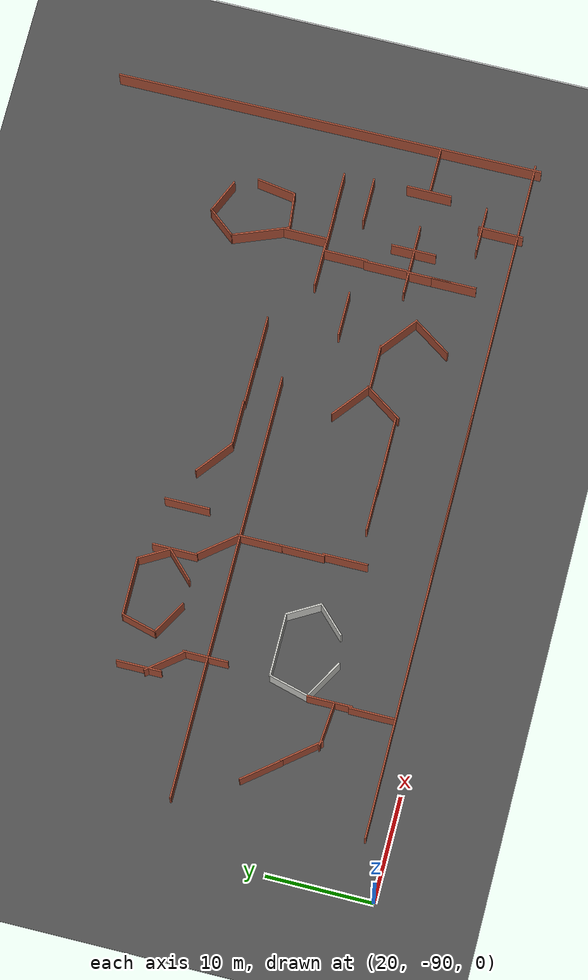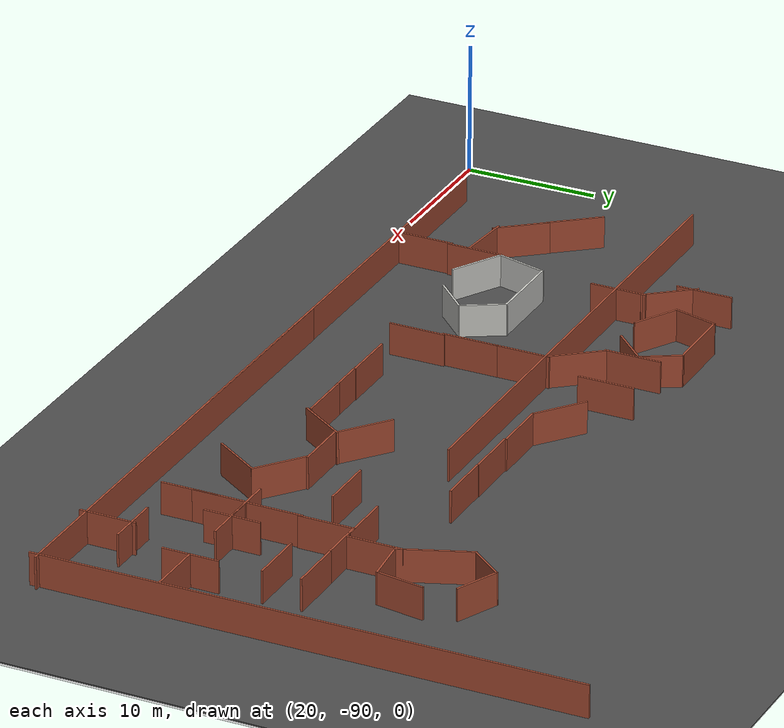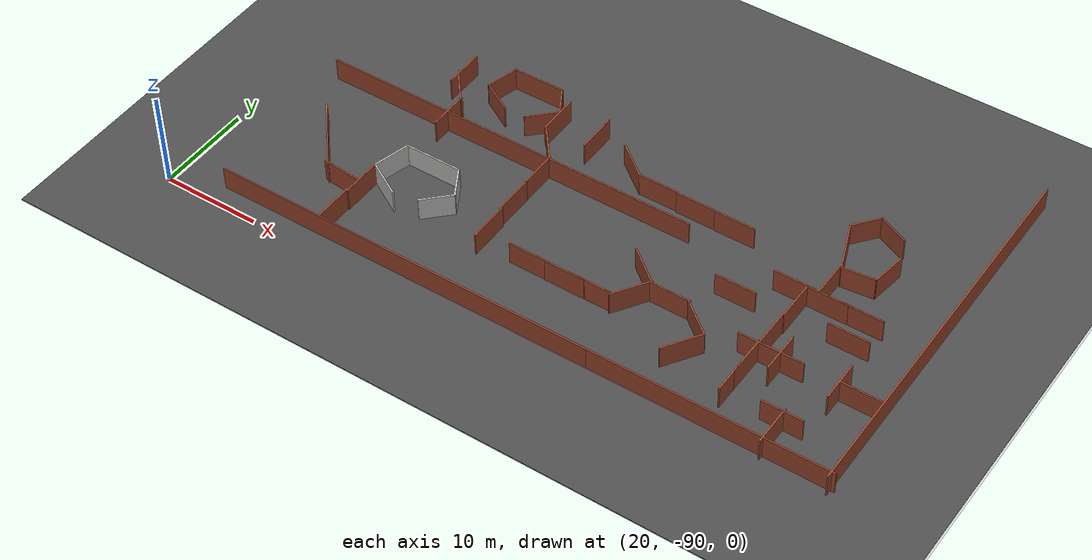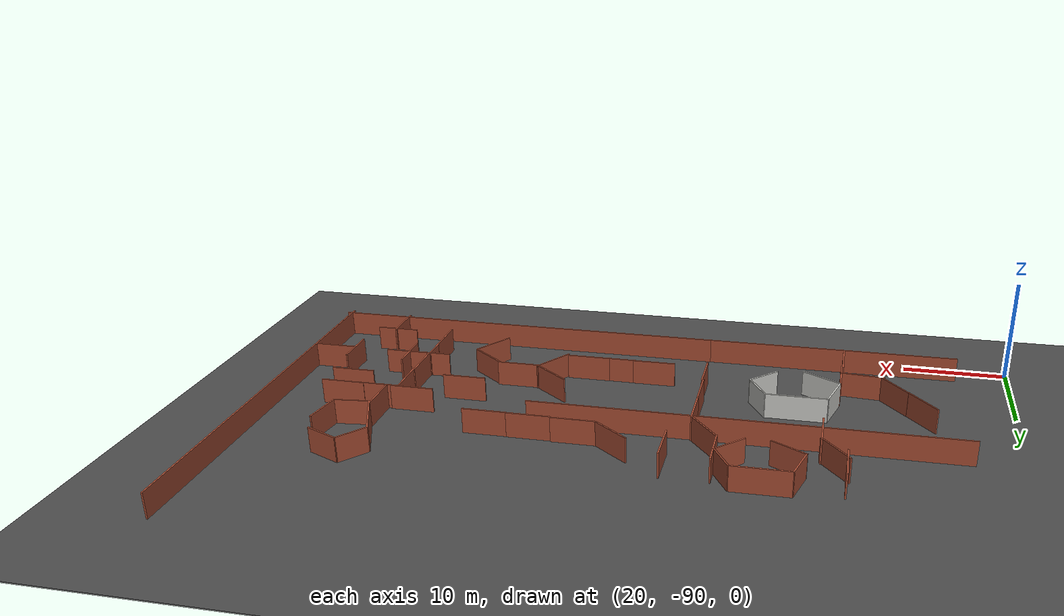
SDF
<sdf version="1.6">
 <world name="default">
  <model name="ground_plane">
   <static>1</static>
   <link name="link">
    <collision name="collision">
     <geometry><plane><normal>0 0 1</normal><size>200 200</size></plane></geometry>
     <surface><friction><ode><mu>100</mu><mu2>50</mu2></ode></friction></surface>
    </collision>
    <visual name="visual">
     <cast_shadows>0</cast_shadows>
     <geometry><plane><normal>0 0 1</normal><size>200 200</size></plane></geometry>
     <material>
      <script><uri>file://media/materials/scripts/gazebo.material</uri><name>Gazebo/Grey</name></script>
     </material>
    </visual>
   </link>
  </model>
  <model name="asphalt_plane">
   <static>1</static>
   <link name="link">
    <collision name="collision"><geometry><box><size>200 200 0.1</size></box></geometry></collision>
    <visual name="visual">
     <cast_shadows>0</cast_shadows>
     <geometry><box><size>200 200 0.1</size></box></geometry>
     <material>
      <script>
       <uri>model://asphalt_plane/materials/scripts</uri>
       <uri>model://asphalt_plane/materials/textures</uri>
       <name>vrc/asphalt</name>
      </script>
     </material>
    </visual>
   </link>
  </model>
  <model name="brick_worlds_1_clone_1_clone">
   <pose>51.1412 -64.7 0 0 -0 0</pose>
   <link name="Wall_0">
    <collision name="Wall_0_Collision">
     <geometry><box><size>4.25 0.15 2.5</size></box></geometry>
     <pose>0 0 1.25 0 -0 0</pose>
    </collision>
    <visual name="Wall_0_Visual">
     <pose>0 0 1.25 0 -0 0</pose>
     <geometry><box><size>4.25 0.15 2.5</size></box></geometry>
     <material>
      <script><uri>file://media/materials/scripts/gazebo.material</uri><name>Gazebo/Bricks</name></script>
      <ambient>1 1 1 1</ambient>
     </material>
    </visual>
    <pose>0 -0 0 0 -0 1.5708</pose>
   </link>
   <static>1</static>
  </model>
  <model name="brick_longwall_clone_clone_1">
   <pose>45.3217 -87.8888 0 0 -0 0</pose>
   <link name="Wall_0">
    <collision name="Wall_0_Collision">
     <geometry><box><size>40.5 0.15 2.5</size></box></geometry>
     <pose>0 0 1.25 0 -0 0</pose>
    </collision>
    <visual name="Wall_0_Visual">
     <pose>0 0 1.25 0 -0 0</pose>
     <geometry><box><size>40.5 0.15 2.5</size></box></geometry>
     <material>
      <script><uri>file://media/materials/scripts/gazebo.material</uri><name>Gazebo/Bricks</name></script>
      <ambient>1 1 1 1</ambient>
     </material>
    </visual>
    <pose>1e-06 0 0 0 -0 0</pose>
   </link>
   <static>1</static>
  </model>
  <model name="brick_longwall_clone_clone_3_clone_0">
   <pose>89.9316 -68.2995 0 0 0 -1.56602</pose>
   <link name="Wall_0">
    <collision name="Wall_0_Collision">
     <geometry><box><size>40.5 0.15 2.5</size></box></geometry>
     <pose>0 0 1.25 0 -0 0</pose>
    </collision>
    <visual name="Wall_0_Visual">
     <pose>0 0 1.25 0 -0 0</pose>
     <geometry><box><size>40.5 0.15 2.5</size></box></geometry>
     <material>
      <script><uri>file://media/materials/scripts/gazebo.material</uri><name>Gazebo/Bricks</name></script>
      <ambient>1 1 1 1</ambient>
     </material>
    </visual>
    <pose>1e-06 0 0 0 -0 0</pose>
   </link>
   <static>1</static>
  </model>
  <model name="brick_longwall_clone_clone_0">
   <pose>44.6402 -70.1055 0 0 -0 0</pose>
   <link name="Wall_0">
    <collision name="Wall_0_Collision">
     <geometry><box><size>40.5 0.15 2.5</size></box></geometry>
     <pose>0 0 1.25 0 -0 0</pose>
    </collision>
    <visual name="Wall_0_Visual">
     <pose>0 0 1.25 0 -0 0</pose>
     <geometry><box><size>40.5 0.15 2.5</size></box></geometry>
     <material>
      <script><uri>file://media/materials/scripts/gazebo.material</uri><name>Gazebo/Bricks</name></script>
      <ambient>1 1 1 1</ambient>
     </material>
    </visual>
    <pose>1e-06 0 0 0 -0 0</pose>
   </link>
   <static>1</static>
  </model>
  <model name="brick_worlds_1_clone_0_clone_clone_0_clone_clone_clone_0">
   <pose>67.9553 -78.1375 0 0 0 -1.57092</pose>
   <link name="Wall_0">
    <collision name="Wall_0_Collision">
     <geometry><box><size>4.25 0.15 2.5</size></box></geometry>
     <pose>0 0 1.25 0 -0 0</pose>
    </collision>
    <visual name="Wall_0_Visual">
     <pose>0 0 1.25 0 -0 0</pose>
     <geometry><box><size>4.25 0.15 2.5</size></box></geometry>
     <material>
      <script><uri>file://media/materials/scripts/gazebo.material</uri><name>Gazebo/Bricks</name></script>
      <ambient>1 1 1 1</ambient>
     </material>
    </visual>
    <pose>0 -0 0 0 -0 1.5708</pose>
   </link>
   <static>1</static>
  </model>
  <model name="brick_worlds_1_clone_1_clone_clone_0_clone">
   <pose>49.3914 -71.9286 0 0 -0 0</pose>
   <link name="Wall_0">
    <collision name="Wall_0_Collision">
     <geometry><box><size>4.25 0.15 2.5</size></box></geometry>
     <pose>0 0 1.25 0 -0 0</pose>
    </collision>
    <visual name="Wall_0_Visual">
     <pose>0 0 1.25 0 -0 0</pose>
     <geometry><box><size>4.25 0.15 2.5</size></box></geometry>
     <material>
      <script><uri>file://media/materials/scripts/gazebo.material</uri><name>Gazebo/Bricks</name></script>
      <ambient>1 1 1 1</ambient>
     </material>
    </visual>
    <pose>0 -0 0 0 -0 1.5708</pose>
   </link>
   <static>1</static>
  </model>
  <model name="brick_worlds_1_clone_1_clone_clone_0_clone_0">
   <pose>49.402 -75.9018 0 0 -0 0</pose>
   <link name="Wall_0">
    <collision name="Wall_0_Collision">
     <geometry><box><size>4.25 0.15 2.5</size></box></geometry>
     <pose>0 0 1.25 0 -0 0</pose>
    </collision>
    <visual name="Wall_0_Visual">
     <pose>0 0 1.25 0 -0 0</pose>
     <geometry><box><size>4.25 0.15 2.5</size></box></geometry>
     <material>
      <script><uri>file://media/materials/scripts/gazebo.material</uri><name>Gazebo/Bricks</name></script>
      <ambient>1 1 1 1</ambient>
     </material>
    </visual>
    <pose>0 -0 0 0 -0 1.5708</pose>
   </link>
   <static>1</static>
  </model>
  <model name="brick_worlds_1_clone_1_clone_clone_0_clone_1">
   <pose>49.5458 -79.924 0 0 -0 0</pose>
   <link name="Wall_0">
    <collision name="Wall_0_Collision">
     <geometry><box><size>4.25 0.15 2.5</size></box></geometry>
     <pose>0 0 1.25 0 -0 0</pose>
    </collision>
    <visual name="Wall_0_Visual">
     <pose>0 0 1.25 0 -0 0</pose>
     <geometry><box><size>4.25 0.15 2.5</size></box></geometry>
     <material>
      <script><uri>file://media/materials/scripts/gazebo.material</uri><name>Gazebo/Bricks</name></script>
      <ambient>1 1 1 1</ambient>
     </material>
    </visual>
    <pose>0 -0 0 0 -0 1.5708</pose>
   </link>
   <static>1</static>
  </model>
  <model name="brick_room1_clone_1">
   <pose>80.2942 -63.443 0 0 -0 1.93941</pose>
   <link name="Wall_11">
    <collision name="Wall_11_Collision">
     <geometry><box><size>3.25 0.15 2.5</size></box></geometry>
     <pose>0 0 1.25 0 -0 0</pose>
    </collision>
    <visual name="Wall_11_Visual">
     <pose>0 0 1.25 0 -0 0</pose>
     <geometry><box><size>3.25 0.15 2.5</size></box></geometry>
     <material>
      <script><uri>file://media/materials/scripts/gazebo.material</uri><name>Gazebo/Bricks</name></script>
      <ambient>1 1 1 1</ambient>
     </material>
    </visual>
    <pose>3.12132 1.19483 0 0 0 -1.0472</pose>
   </link>
   <link name="Wall_12">
    <collision name="Wall_12_Collision">
     <geometry><box><size>3.5 0.15 2.5</size></box></geometry>
     <pose>0 0 1.25 0 -0 0</pose>
    </collision>
    <visual name="Wall_12_Visual">
     <pose>0 0 1.25 0 -0 0</pose>
     <geometry><box><size>3.5 0.15 2.5</size></box></geometry>
     <material>
      <script><uri>file://media/materials/scripts/gazebo.material</uri><name>Gazebo/Bricks</name></script>
      <ambient>1 1 1 1</ambient>
     </material>
    </visual>
    <pose>2.71192 -1.33192 0 0 0 -2.35619</pose>
   </link>
   <link name="Wall_7">
    <collision name="Wall_7_Collision">
     <geometry><box><size>5.52935 0.15 2.5</size></box></geometry>
     <pose>0 0 1.25 0 -0 0</pose>
    </collision>
    <visual name="Wall_7_Visual">
     <pose>0 0 1.25 0 -0 0</pose>
     <geometry><box><size>5.52935 0.15 2.5</size></box></geometry>
     <material>
      <script><uri>file://media/materials/scripts/gazebo.material</uri><name>Gazebo/Bricks</name></script>
      <ambient>1 1 1 1</ambient>
     </material>
    </visual>
    <pose>-0.343285 2.51793 0 0 0 -3.13444</pose>
   </link>
   <link name="Wall_8">
    <collision name="Wall_8_Collision">
     <geometry><box><size>3.5 0.15 2.5</size></box></geometry>
     <pose>0 0 1.25 0 -0 0</pose>
    </collision>
    <visual name="Wall_8_Visual">
     <pose>0 0 1.25 0 -0 0</pose>
     <geometry><box><size>3.5 0.15 2.5</size></box></geometry>
     <material>
      <script><uri>file://media/materials/scripts/gazebo.material</uri><name>Gazebo/Bricks</name></script>
      <ambient>1 1 1 1</ambient>
     </material>
    </visual>
    <pose>-3.46641 0.880761 0 0 0 -1.8326</pose>
   </link>
   <link name="Wall_9">
    <collision name="Wall_9_Collision">
     <geometry><box><size>3.75 0.15 2.5</size></box></geometry>
     <pose>0 0 1.25 0 -0 0</pose>
    </collision>
    <visual name="Wall_9_Visual">
     <pose>0 0 1.25 0 -0 0</pose>
     <geometry><box><size>3.75 0.15 2.5</size></box></geometry>
     <material>
      <script><uri>file://media/materials/scripts/gazebo.material</uri><name>Gazebo/Bricks</name></script>
      <ambient>1 1 1 1</ambient>
     </material>
    </visual>
    <pose>-2.34109 -1.63716 0 0 0 -0.523599</pose>
   </link>
   <static>1</static>
  </model>
  <model name="brick_worlds_1_clone_0_clone_clone_0_clone_2_clone_0_clone_clone_0">
   <pose>68.044 -67.3876 0 0 0 -1.57092</pose>
   <link name="Wall_0">
    <collision name="Wall_0_Collision">
     <geometry><box><size>4.25 0.15 2.5</size></box></geometry>
     <pose>0 0 1.25 0 -0 0</pose>
    </collision>
    <visual name="Wall_0_Visual">
     <pose>0 0 1.25 0 -0 0</pose>
     <geometry><box><size>4.25 0.15 2.5</size></box></geometry>
     <material>
      <script><uri>file://media/materials/scripts/gazebo.material</uri><name>Gazebo/Bricks</name></script>
      <ambient>1 1 1 1</ambient>
     </material>
    </visual>
    <pose>0 -0 0 0 -0 1.5708</pose>
   </link>
   <static>1</static>
  </model>
  <model name="brick_worlds_1_clone_0_clone_clone_0_clone_2_clone_0_clone_clone_1">
   <pose>63.8743 -67.3475 0 0 0 -1.57092</pose>
   <link name="Wall_0">
    <collision name="Wall_0_Collision">
     <geometry><box><size>4.25 0.15 2.5</size></box></geometry>
     <pose>0 0 1.25 0 -0 0</pose>
    </collision>
    <visual name="Wall_0_Visual">
     <pose>0 0 1.25 0 -0 0</pose>
     <geometry><box><size>4.25 0.15 2.5</size></box></geometry>
     <material>
      <script><uri>file://media/materials/scripts/gazebo.material</uri><name>Gazebo/Bricks</name></script>
      <ambient>1 1 1 1</ambient>
     </material>
    </visual>
    <pose>0 -0 0 0 -0 1.5708</pose>
   </link>
   <static>1</static>
  </model>
  <model name="brick_worlds_1_clone_0_clone_clone_0_clone_2_clone_0_clone_clone_2">
   <pose>59.7006 -67.2411 0 0 0 -1.57092</pose>
   <link name="Wall_0">
    <collision name="Wall_0_Collision">
     <geometry><box><size>4.25 0.15 2.5</size></box></geometry>
     <pose>0 0 1.25 0 -0 0</pose>
    </collision>
    <visual name="Wall_0_Visual">
     <pose>0 0 1.25 0 -0 0</pose>
     <geometry><box><size>4.25 0.15 2.5</size></box></geometry>
     <material>
      <script><uri>file://media/materials/scripts/gazebo.material</uri><name>Gazebo/Bricks</name></script>
      <ambient>1 1 1 1</ambient>
     </material>
    </visual>
    <pose>0 -0 0 0 -0 1.5708</pose>
   </link>
   <static>1</static>
  </model>
  <model name="brick_worlds_2_clone_clone_clone_clone_clone_0">
   <pose>28.8699 -77.3214 0 0 -0 0.67691</pose>
   <link name="Wall_0">
    <collision name="Wall_0_Collision">
     <geometry><box><size>4.25 0.15 2.5</size></box></geometry>
     <pose>0 0 1.25 0 -0 0</pose>
    </collision>
    <visual name="Wall_0_Visual">
     <pose>0 0 1.25 0 -0 0</pose>
     <geometry><box><size>4.25 0.15 2.5</size></box></geometry>
     <material>
      <script><uri>file://media/materials/scripts/gazebo.material</uri><name>Gazebo/Bricks</name></script>
      <ambient>1 1 1 1</ambient>
     </material>
    </visual>
    <pose>0 -0 0 0 -0 1.5708</pose>
   </link>
   <static>1</static>
  </model>
  <model name="brick_worlds_1_clone_1_clone_clone_0_clone_9_clone">
   <pose>36.2856 -85.6988 0 0 -0 0</pose>
   <link name="Wall_0">
    <collision name="Wall_0_Collision">
     <geometry><box><size>4.25 0.15 2.5</size></box></geometry>
     <pose>0 0 1.25 0 -0 0</pose>
    </collision>
    <visual name="Wall_0_Visual">
     <pose>0 0 1.25 0 -0 0</pose>
     <geometry><box><size>4.25 0.15 2.5</size></box></geometry>
     <material>
      <script><uri>file://media/materials/scripts/gazebo.material</uri><name>Gazebo/Bricks</name></script>
      <ambient>1 1 1 1</ambient>
     </material>
    </visual>
    <pose>0 -0 0 0 -0 1.5708</pose>
   </link>
   <static>1</static>
  </model>
  <model name="brick_worlds_1_clone_1_clone_clone_0_clone_9_clone_0">
   <pose>36.4214 -81.7739 0 0 -0 0</pose>
   <link name="Wall_0">
    <collision name="Wall_0_Collision">
     <geometry><box><size>4.25 0.15 2.5</size></box></geometry>
     <pose>0 0 1.25 0 -0 0</pose>
    </collision>
    <visual name="Wall_0_Visual">
     <pose>0 0 1.25 0 -0 0</pose>
     <geometry><box><size>4.25 0.15 2.5</size></box></geometry>
     <material>
      <script><uri>file://media/materials/scripts/gazebo.material</uri><name>Gazebo/Bricks</name></script>
      <ambient>1 1 1 1</ambient>
     </material>
    </visual>
    <pose>0 -0 0 0 -0 1.5708</pose>
   </link>
   <static>1</static>
  </model>
  <model name="brick_worlds_2_clone_clone_clone_clone_clone_1_clone">
   <pose>34.3447 -82.0215 0 0 -0 1.48429</pose>
   <link name="Wall_0">
    <collision name="Wall_0_Collision">
     <geometry><box><size>4.25 0.15 2.5</size></box></geometry>
     <pose>0 0 1.25 0 -0 0</pose>
    </collision>
    <visual name="Wall_0_Visual">
     <pose>0 0 1.25 0 -0 0</pose>
     <geometry><box><size>4.25 0.15 2.5</size></box></geometry>
     <material>
      <script><uri>file://media/materials/scripts/gazebo.material</uri><name>Gazebo/Bricks</name></script>
      <ambient>1 1 1 1</ambient>
     </material>
    </visual>
    <pose>0 -0 0 0 -0 1.5708</pose>
   </link>
   <static>1</static>
  </model>
  <model name="brick_worlds_2_clone_clone_clone_clone_clone_1_clone_0">
   <pose>31.4278 -80.4502 0 0 -0 0.67691</pose>
   <link name="Wall_0">
    <collision name="Wall_0_Collision">
     <geometry><box><size>4.25 0.15 2.5</size></box></geometry>
     <pose>0 0 1.25 0 -0 0</pose>
    </collision>
    <visual name="Wall_0_Visual">
     <pose>0 0 1.25 0 -0 0</pose>
     <geometry><box><size>4.25 0.15 2.5</size></box></geometry>
     <material>
      <script><uri>file://media/materials/scripts/gazebo.material</uri><name>Gazebo/Bricks</name></script>
      <ambient>1 1 1 1</ambient>
     </material>
    </visual>
    <pose>0 -0 0 0 -0 1.5708</pose>
   </link>
   <static>1</static>
  </model>
  <model name="brick_worlds_0_clone_clone_clone">
   <pose>55.9904 -65.9681 0 0 -0 0.90566</pose>
   <link name="Wall_0">
    <collision name="Wall_0_Collision">
     <geometry><box><size>4.25 0.15 2.5</size></box></geometry>
     <pose>0 0 1.25 0 -0 0</pose>
    </collision>
    <visual name="Wall_0_Visual">
     <pose>0 0 1.25 0 -0 0</pose>
     <geometry><box><size>4.25 0.15 2.5</size></box></geometry>
     <material>
      <script><uri>file://media/materials/scripts/gazebo.material</uri><name>Gazebo/Bricks</name></script>
      <ambient>1 1 1 1</ambient>
     </material>
    </visual>
    <pose>0 -0 0 0 -0 1.5708</pose>
   </link>
   <static>1</static>
  </model>
  <model name="brick_worlds_1_clone_0_clone_clone_0_clone_clone_0_clone_clone_clone_clone">
   <pose>54.8178 -81.1067 0 0 0 -1.57092</pose>
   <link name="Wall_0">
    <collision name="Wall_0_Collision">
     <geometry><box><size>4.25 0.15 2.5</size></box></geometry>
     <pose>0 0 1.25 0 -0 0</pose>
    </collision>
    <visual name="Wall_0_Visual">
     <pose>0 0 1.25 0 -0 0</pose>
     <geometry><box><size>4.25 0.15 2.5</size></box></geometry>
     <material>
      <script><uri>file://media/materials/scripts/gazebo.material</uri><name>Gazebo/Bricks</name></script>
      <ambient>1 1 1 1</ambient>
     </material>
    </visual>
    <pose>0 -0 0 0 -0 1.5708</pose>
   </link>
   <static>1</static>
  </model>
  <model name="brick_worlds_1_clone_0_clone_clone_0_clone_clone_0_clone_clone_clone_clone_0">
   <pose>58.7296 -81.1514 0 0 0 -1.57092</pose>
   <link name="Wall_0">
    <collision name="Wall_0_Collision">
     <geometry><box><size>4.25 0.15 2.5</size></box></geometry>
     <pose>0 0 1.25 0 -0 0</pose>
    </collision>
    <visual name="Wall_0_Visual">
     <pose>0 0 1.25 0 -0 0</pose>
     <geometry><box><size>4.25 0.15 2.5</size></box></geometry>
     <material>
      <script><uri>file://media/materials/scripts/gazebo.material</uri><name>Gazebo/Bricks</name></script>
      <ambient>1 1 1 1</ambient>
     </material>
    </visual>
    <pose>0 -0 0 0 -0 1.5708</pose>
   </link>
   <static>1</static>
  </model>
  <model name="brick_worlds_1_clone_0_clone_clone_0_clone_clone_0_clone_clone_clone_clone_1">
   <pose>61.493 -81.135 0 0 0 -1.57092</pose>
   <link name="Wall_0">
    <collision name="Wall_0_Collision">
     <geometry><box><size>4.25 0.15 2.5</size></box></geometry>
     <pose>0 0 1.25 0 -0 0</pose>
    </collision>
    <visual name="Wall_0_Visual">
     <pose>0 0 1.25 0 -0 0</pose>
     <geometry><box><size>4.25 0.15 2.5</size></box></geometry>
     <material>
      <script><uri>file://media/materials/scripts/gazebo.material</uri><name>Gazebo/Bricks</name></script>
      <ambient>1 1 1 1</ambient>
     </material>
    </visual>
    <pose>0 -0 0 0 -0 1.5708</pose>
   </link>
   <static>1</static>
  </model>
  <model name="brick_worlds_1_clone_1_clone_7_clone_clone_clone_clone_0">
   <pose>64.8036 -79.6697 0 0 0 -0.589382</pose>
   <link name="Wall_0">
    <collision name="Wall_0_Collision">
     <geometry><box><size>4.25 0.15 2.5</size></box></geometry>
     <pose>0 0 1.25 0 -0 0</pose>
    </collision>
    <visual name="Wall_0_Visual">
     <pose>0 0 1.25 0 -0 0</pose>
     <geometry><box><size>4.25 0.15 2.5</size></box></geometry>
     <material>
      <script><uri>file://media/materials/scripts/gazebo.material</uri><name>Gazebo/Bricks</name></script>
      <ambient>1 1 1 1</ambient>
     </material>
    </visual>
    <pose>0 -0 0 0 -0 1.5708</pose>
   </link>
   <static>1</static>
  </model>
  <model name="brick_worlds_1_clone_1_clone_7_clone_clone_0_clone_0_clone">
   <pose>64.2131 -76.6769 0 0 -0 0.90029</pose>
   <link name="Wall_0">
    <collision name="Wall_0_Collision">
     <geometry><box><size>4.25 0.15 2.5</size></box></geometry>
     <pose>0 0 1.25 0 -0 0</pose>
    </collision>
    <visual name="Wall_0_Visual">
     <pose>0 0 1.25 0 -0 0</pose>
     <geometry><box><size>4.25 0.15 2.5</size></box></geometry>
     <material>
      <script><uri>file://media/materials/scripts/gazebo.material</uri><name>Gazebo/Bricks</name></script>
      <ambient>1 1 1 1</ambient>
     </material>
    </visual>
    <pose>0 -0 0 0 -0 1.5708</pose>
   </link>
   <static>1</static>
  </model>
  <model name="brick_worlds_1_clone_0_clone_clone_clone">
   <pose>83.5149 -73.633 0 0 0 -1.57092</pose>
   <link name="Wall_0">
    <collision name="Wall_0_Collision">
     <geometry><box><size>4.25 0.15 2.5</size></box></geometry>
     <pose>0 0 1.25 0 -0 0</pose>
    </collision>
    <visual name="Wall_0_Visual">
     <pose>0 0 1.25 0 -0 0</pose>
     <geometry><box><size>4.25 0.15 2.5</size></box></geometry>
     <material>
      <script><uri>file://media/materials/scripts/gazebo.material</uri><name>Gazebo/Bricks</name></script>
      <ambient>1 1 1 1</ambient>
     </material>
    </visual>
    <pose>0 -0 0 0 -0 1.5708</pose>
   </link>
   <static>1</static>
  </model>
  <model name="brick_worlds_1_clone_0_clone_clone_clone_0">
   <pose>83.2444 -84.4697 0 0 0 -1.57092</pose>
   <link name="Wall_0">
    <collision name="Wall_0_Collision">
     <geometry><box><size>4.25 0.15 2.5</size></box></geometry>
     <pose>0 0 1.25 0 -0 0</pose>
    </collision>
    <visual name="Wall_0_Visual">
     <pose>0 0 1.25 0 -0 0</pose>
     <geometry><box><size>4.25 0.15 2.5</size></box></geometry>
     <material>
      <script><uri>file://media/materials/scripts/gazebo.material</uri><name>Gazebo/Bricks</name></script>
      <ambient>1 1 1 1</ambient>
     </material>
    </visual>
    <pose>0 -0 0 0 -0 1.5708</pose>
   </link>
   <static>1</static>
  </model>
  <model name="brick_worlds_1_clone_0_clone_clone_clone_1">
   <pose>77.5975 -78.9334 0 0 0 -1.57092</pose>
   <link name="Wall_0">
    <collision name="Wall_0_Collision">
     <geometry><box><size>4.25 0.15 2.5</size></box></geometry>
     <pose>0 0 1.25 0 -0 0</pose>
    </collision>
    <visual name="Wall_0_Visual">
     <pose>0 0 1.25 0 -0 0</pose>
     <geometry><box><size>4.25 0.15 2.5</size></box></geometry>
     <material>
      <script><uri>file://media/materials/scripts/gazebo.material</uri><name>Gazebo/Bricks</name></script>
      <ambient>1 1 1 1</ambient>
     </material>
    </visual>
    <pose>0 -0 0 0 -0 1.5708</pose>
   </link>
   <static>1</static>
  </model>
  <model name="brick_worlds_1_clone_0_clone_clone_clone_2">
   <pose>87.7856 -78.9348 0 0 0 -1.57092</pose>
   <link name="Wall_0">
    <collision name="Wall_0_Collision">
     <geometry><box><size>4.25 0.15 2.5</size></box></geometry>
     <pose>0 0 1.25 0 -0 0</pose>
    </collision>
    <visual name="Wall_0_Visual">
     <pose>0 0 1.25 0 -0 0</pose>
     <geometry><box><size>4.25 0.15 2.5</size></box></geometry>
     <material>
      <script><uri>file://media/materials/scripts/gazebo.material</uri><name>Gazebo/Bricks</name></script>
      <ambient>1 1 1 1</ambient>
     </material>
    </visual>
    <pose>0 -0 0 0 -0 1.5708</pose>
   </link>
   <static>1</static>
  </model>
  <model name="brick_worlds_1_clone_clone_clone_clone">
   <pose>85.6489 -78.894 0 0 -0 0</pose>
   <link name="Wall_0">
    <collision name="Wall_0_Collision">
     <geometry><box><size>4.25 0.15 2.5</size></box></geometry>
     <pose>0 0 1.25 0 -0 0</pose>
    </collision>
    <visual name="Wall_0_Visual">
     <pose>0 0 1.25 0 -0 0</pose>
     <geometry><box><size>4.25 0.15 2.5</size></box></geometry>
     <material>
      <script><uri>file://media/materials/scripts/gazebo.material</uri><name>Gazebo/Bricks</name></script>
      <ambient>1 1 1 1</ambient>
     </material>
    </visual>
    <pose>0 -0 0 0 -0 1.5708</pose>
   </link>
   <static>1</static>
  </model>
  <model name="brick_worlds_1_clone_clone_clone_clone_0">
   <pose>79.734 -78.8659 0 0 -0 0</pose>
   <link name="Wall_0">
    <collision name="Wall_0_Collision">
     <geometry><box><size>4.25 0.15 2.5</size></box></geometry>
     <pose>0 0 1.25 0 -0 0</pose>
    </collision>
    <visual name="Wall_0_Visual">
     <pose>0 0 1.25 0 -0 0</pose>
     <geometry><box><size>4.25 0.15 2.5</size></box></geometry>
     <material>
      <script><uri>file://media/materials/scripts/gazebo.material</uri><name>Gazebo/Bricks</name></script>
      <ambient>1 1 1 1</ambient>
     </material>
    </visual>
    <pose>0 -0 0 0 -0 1.5708</pose>
   </link>
   <static>1</static>
  </model>
  <model name="brick_worlds_1_clone_clone_clone_clone_1">
   <pose>83.381 -86.268 0 0 -0 0</pose>
   <link name="Wall_0">
    <collision name="Wall_0_Collision">
     <geometry><box><size>4.25 0.15 2.5</size></box></geometry>
     <pose>0 0 1.25 0 -0 0</pose>
    </collision>
    <visual name="Wall_0_Visual">
     <pose>0 0 1.25 0 -0 0</pose>
     <geometry><box><size>4.25 0.15 2.5</size></box></geometry>
     <material>
      <script><uri>file://media/materials/scripts/gazebo.material</uri><name>Gazebo/Bricks</name></script>
      <ambient>1 1 1 1</ambient>
     </material>
    </visual>
    <pose>0 -0 0 0 -0 1.5708</pose>
   </link>
   <static>1</static>
  </model>
  <model name="brick_worlds_1_clone_clone_clone_clone_2">
   <pose>77.5229 -80.8692 0 0 -0 0</pose>
   <link name="Wall_0">
    <collision name="Wall_0_Collision">
     <geometry><box><size>4.25 0.15 2.5</size></box></geometry>
     <pose>0 0 1.25 0 -0 0</pose>
    </collision>
    <visual name="Wall_0_Visual">
     <pose>0 0 1.25 0 -0 0</pose>
     <geometry><box><size>4.25 0.15 2.5</size></box></geometry>
     <material>
      <script><uri>file://media/materials/scripts/gazebo.material</uri><name>Gazebo/Bricks</name></script>
      <ambient>1 1 1 1</ambient>
     </material>
    </visual>
    <pose>0 -0 0 0 -0 1.5708</pose>
   </link>
   <static>1</static>
  </model>
  <model name="brick_worlds_1_clone_clone_clone_clone_3">
   <pose>77.5192 -83.2309 0 0 -0 0</pose>
   <link name="Wall_0">
    <collision name="Wall_0_Collision">
     <geometry><box><size>4.25 0.15 2.5</size></box></geometry>
     <pose>0 0 1.25 0 -0 0</pose>
    </collision>
    <visual name="Wall_0_Visual">
     <pose>0 0 1.25 0 -0 0</pose>
     <geometry><box><size>4.25 0.15 2.5</size></box></geometry>
     <material>
      <script><uri>file://media/materials/scripts/gazebo.material</uri><name>Gazebo/Bricks</name></script>
      <ambient>1 1 1 1</ambient>
     </material>
    </visual>
    <pose>0 -0 0 0 -0 1.5708</pose>
   </link>
   <static>1</static>
  </model>
  <model name="brick_worlds_1_clone_clone_clone_clone_4">
   <pose>77.6096 -76.7617 0 0 -0 0</pose>
   <link name="Wall_0">
    <collision name="Wall_0_Collision">
     <geometry><box><size>4.25 0.15 2.5</size></box></geometry>
     <pose>0 0 1.25 0 -0 0</pose>
    </collision>
    <visual name="Wall_0_Visual">
     <pose>0 0 1.25 0 -0 0</pose>
     <geometry><box><size>4.25 0.15 2.5</size></box></geometry>
     <material>
      <script><uri>file://media/materials/scripts/gazebo.material</uri><name>Gazebo/Bricks</name></script>
      <ambient>1 1 1 1</ambient>
     </material>
    </visual>
    <pose>0 -0 0 0 -0 1.5708</pose>
   </link>
   <static>1</static>
  </model>
  <model name="brick_worlds_1_clone_clone_clone_clone_5">
   <pose>77.707 -72.8815 0 0 -0 0</pose>
   <link name="Wall_0">
    <collision name="Wall_0_Collision">
     <geometry><box><size>4.25 0.15 2.5</size></box></geometry>
     <pose>0 0 1.25 0 -0 0</pose>
    </collision>
    <visual name="Wall_0_Visual">
     <pose>0 0 1.25 0 -0 0</pose>
     <geometry><box><size>4.25 0.15 2.5</size></box></geometry>
     <material>
      <script><uri>file://media/materials/scripts/gazebo.material</uri><name>Gazebo/Bricks</name></script>
      <ambient>1 1 1 1</ambient>
     </material>
    </visual>
    <pose>0 -0 0 0 -0 1.5708</pose>
   </link>
   <static>1</static>
  </model>
  <model name="brick_worlds_1_clone_0_clone_clone_clone_clone">
   <pose>79.7687 -70.8654 0 0 0 -1.57092</pose>
   <link name="Wall_0">
    <collision name="Wall_0_Collision">
     <geometry><box><size>4.25 0.15 2.5</size></box></geometry>
     <pose>0 0 1.25 0 -0 0</pose>
    </collision>
    <visual name="Wall_0_Visual">
     <pose>0 0 1.25 0 -0 0</pose>
     <geometry><box><size>4.25 0.15 2.5</size></box></geometry>
     <material>
      <script><uri>file://media/materials/scripts/gazebo.material</uri><name>Gazebo/Bricks</name></script>
      <ambient>1 1 1 1</ambient>
     </material>
    </visual>
    <pose>0 -0 0 0 -0 1.5708</pose>
   </link>
   <static>1</static>
  </model>
  <model name="brick_worlds_1_clone_0_clone_clone_clone_clone_0">
   <pose>83.3358 -70.8342 0 0 0 -1.57092</pose>
   <link name="Wall_0">
    <collision name="Wall_0_Collision">
     <geometry><box><size>4.25 0.15 2.5</size></box></geometry>
     <pose>0 0 1.25 0 -0 0</pose>
    </collision>
    <visual name="Wall_0_Visual">
     <pose>0 0 1.25 0 -0 0</pose>
     <geometry><box><size>4.25 0.15 2.5</size></box></geometry>
     <material>
      <script><uri>file://media/materials/scripts/gazebo.material</uri><name>Gazebo/Bricks</name></script>
      <ambient>1 1 1 1</ambient>
     </material>
    </visual>
    <pose>0 -0 0 0 -0 1.5708</pose>
   </link>
   <static>1</static>
  </model>
  <model name="brick_worlds_1_clone_0_clone_clone_clone_clone_1">
   <pose>80.0078 -78.8997 0 0 0 -1.57092</pose>
   <link name="Wall_0">
    <collision name="Wall_0_Collision">
     <geometry><box><size>4.25 0.15 2.5</size></box></geometry>
     <pose>0 0 1.25 0 -0 0</pose>
    </collision>
    <visual name="Wall_0_Visual">
     <pose>0 0 1.25 0 -0 0</pose>
     <geometry><box><size>4.25 0.15 2.5</size></box></geometry>
     <material>
      <script><uri>file://media/materials/scripts/gazebo.material</uri><name>Gazebo/Bricks</name></script>
      <ambient>1 1 1 1</ambient>
     </material>
    </visual>
    <pose>0 -0 0 0 -0 1.5708</pose>
   </link>
   <static>1</static>
  </model>
  <model name="brick_worlds_1_clone_0_clone_clone_clone_clone_2">
   <pose>76.3534 -70.7976 0 0 0 -1.57092</pose>
   <link name="Wall_0">
    <collision name="Wall_0_Collision">
     <geometry><box><size>4.25 0.15 2.5</size></box></geometry>
     <pose>0 0 1.25 0 -0 0</pose>
    </collision>
    <visual name="Wall_0_Visual">
     <pose>0 0 1.25 0 -0 0</pose>
     <geometry><box><size>4.25 0.15 2.5</size></box></geometry>
     <material>
      <script><uri>file://media/materials/scripts/gazebo.material</uri><name>Gazebo/Bricks</name></script>
      <ambient>1 1 1 1</ambient>
     </material>
    </visual>
    <pose>0 -0 0 0 -0 1.5708</pose>
   </link>
   <static>1</static>
  </model>
  <model name="brick_worlds_1_clone_0_clone_clone_clone_clone_3">
   <pose>72.2405 -74.1054 0 0 0 -1.57092</pose>
   <link name="Wall_0">
    <collision name="Wall_0_Collision">
     <geometry><box><size>4.25 0.15 2.5</size></box></geometry>
     <pose>0 0 1.25 0 -0 0</pose>
    </collision>
    <visual name="Wall_0_Visual">
     <pose>0 0 1.25 0 -0 0</pose>
     <geometry><box><size>4.25 0.15 2.5</size></box></geometry>
     <material>
      <script><uri>file://media/materials/scripts/gazebo.material</uri><name>Gazebo/Bricks</name></script>
      <ambient>1 1 1 1</ambient>
     </material>
    </visual>
    <pose>0 -0 0 0 -0 1.5708</pose>
   </link>
   <static>1</static>
  </model>
  <model name="brick_worlds_1_clone_clone_clone_clone_5_clone">
   <pose>78.8638 -68.7584 0 0 -0 0</pose>
   <link name="Wall_0">
    <collision name="Wall_0_Collision">
     <geometry><box><size>4.25 0.15 2.5</size></box></geometry>
     <pose>0 0 1.25 0 -0 0</pose>
    </collision>
    <visual name="Wall_0_Visual">
     <pose>0 0 1.25 0 -0 0</pose>
     <geometry><box><size>4.25 0.15 2.5</size></box></geometry>
     <material>
      <script><uri>file://media/materials/scripts/gazebo.material</uri><name>Gazebo/Bricks</name></script>
      <ambient>1 1 1 1</ambient>
     </material>
    </visual>
    <pose>0 -0 0 0 -0 1.5708</pose>
   </link>
   <static>1</static>
  </model>
  <model name="brick_worlds_1_clone_1_clone_7_clone_clone_0_clone_0_clone_clone">
   <pose>71.537 -79.4816 0 0 -0 0.90029</pose>
   <link name="Wall_0">
    <collision name="Wall_0_Collision">
     <geometry><box><size>4.25 0.15 2.5</size></box></geometry>
     <pose>0 0 1.25 0 -0 0</pose>
    </collision>
    <visual name="Wall_0_Visual">
     <pose>0 0 1.25 0 -0 0</pose>
     <geometry><box><size>4.25 0.15 2.5</size></box></geometry>
     <material>
      <script><uri>file://media/materials/scripts/gazebo.material</uri><name>Gazebo/Bricks</name></script>
      <ambient>1 1 1 1</ambient>
     </material>
    </visual>
    <pose>0 -0 0 0 -0 1.5708</pose>
   </link>
   <static>1</static>
  </model>
  <model name="brick_worlds_1_clone_1_clone_7_clone_clone_clone_clone_0_clone">
   <pose>71.9701 -82.5172 0 0 0 -0.589382</pose>
   <link name="Wall_0">
    <collision name="Wall_0_Collision">
     <geometry><box><size>4.25 0.15 2.5</size></box></geometry>
     <pose>0 0 1.25 0 -0 0</pose>
    </collision>
    <visual name="Wall_0_Visual">
     <pose>0 0 1.25 0 -0 0</pose>
     <geometry><box><size>4.25 0.15 2.5</size></box></geometry>
     <material>
      <script><uri>file://media/materials/scripts/gazebo.material</uri><name>Gazebo/Bricks</name></script>
      <ambient>1 1 1 1</ambient>
     </material>
    </visual>
    <pose>0 -0 0 0 -0 1.5708</pose>
   </link>
   <static>1</static>
  </model>
  <model name="brick_longwall_clone_clone_1_clone">
   <pose>70.225 -87.8698 0 0 -0 0</pose>
   <link name="Wall_0">
    <collision name="Wall_0_Collision">
     <geometry><box><size>40.5 0.15 2.5</size></box></geometry>
     <pose>0 0 1.25 0 -0 0</pose>
    </collision>
    <visual name="Wall_0_Visual">
     <pose>0 0 1.25 0 -0 0</pose>
     <geometry><box><size>40.5 0.15 2.5</size></box></geometry>
     <material>
      <script><uri>file://media/materials/scripts/gazebo.material</uri><name>Gazebo/Bricks</name></script>
      <ambient>1 1 1 1</ambient>
     </material>
    </visual>
    <pose>1e-06 0 0 0 -0 0</pose>
   </link>
   <static>1</static>
  </model>
  <model name="brick_room1_clone_clone">
   <pose>42.7388 -64.1548 0 0 -0 0</pose>
   <link name="Wall_11">
    <collision name="Wall_11_Collision">
     <geometry><box><size>3.25 0.15 2.5</size></box></geometry>
     <pose>0 0 1.25 0 -0 0</pose>
    </collision>
    <visual name="Wall_11_Visual">
     <pose>0 0 1.25 0 -0 0</pose>
     <geometry><box><size>3.25 0.15 2.5</size></box></geometry>
     <material>
      <script><uri>file://media/materials/scripts/gazebo.material</uri><name>Gazebo/Bricks</name></script>
      <ambient>1 1 1 1</ambient>
     </material>
    </visual>
    <pose>3.12132 1.19483 0 0 0 -1.0472</pose>
   </link>
   <link name="Wall_12">
    <collision name="Wall_12_Collision">
     <geometry><box><size>3.5 0.15 2.5</size></box></geometry>
     <pose>0 0 1.25 0 -0 0</pose>
    </collision>
    <visual name="Wall_12_Visual">
     <pose>0 0 1.25 0 -0 0</pose>
     <geometry><box><size>3.5 0.15 2.5</size></box></geometry>
     <material>
      <script><uri>file://media/materials/scripts/gazebo.material</uri><name>Gazebo/Bricks</name></script>
      <ambient>1 1 1 1</ambient>
     </material>
    </visual>
    <pose>2.71192 -1.33192 0 0 0 -2.35619</pose>
   </link>
   <link name="Wall_7">
    <collision name="Wall_7_Collision">
     <geometry><box><size>5.52935 0.15 2.5</size></box></geometry>
     <pose>0 0 1.25 0 -0 0</pose>
    </collision>
    <visual name="Wall_7_Visual">
     <pose>0 0 1.25 0 -0 0</pose>
     <geometry><box><size>5.52935 0.15 2.5</size></box></geometry>
     <material>
      <script><uri>file://media/materials/scripts/gazebo.material</uri><name>Gazebo/Bricks</name></script>
      <ambient>1 1 1 1</ambient>
     </material>
    </visual>
    <pose>-0.343285 2.51793 0 0 0 -3.13444</pose>
   </link>
   <link name="Wall_8">
    <collision name="Wall_8_Collision">
     <geometry><box><size>3.5 0.15 2.5</size></box></geometry>
     <pose>0 0 1.25 0 -0 0</pose>
    </collision>
    <visual name="Wall_8_Visual">
     <pose>0 0 1.25 0 -0 0</pose>
     <geometry><box><size>3.5 0.15 2.5</size></box></geometry>
     <material>
      <script><uri>file://media/materials/scripts/gazebo.material</uri><name>Gazebo/Bricks</name></script>
      <ambient>1 1 1 1</ambient>
     </material>
    </visual>
    <pose>-3.46641 0.880761 0 0 0 -1.8326</pose>
   </link>
   <link name="Wall_9">
    <collision name="Wall_9_Collision">
     <geometry><box><size>3.75 0.15 2.5</size></box></geometry>
     <pose>0 0 1.25 0 -0 0</pose>
    </collision>
    <visual name="Wall_9_Visual">
     <pose>0 0 1.25 0 -0 0</pose>
     <geometry><box><size>3.75 0.15 2.5</size></box></geometry>
     <material>
      <script><uri>file://media/materials/scripts/gazebo.material</uri><name>Gazebo/Bricks</name></script>
      <ambient>1 1 1 1</ambient>
     </material>
    </visual>
    <pose>-2.34109 -1.63716 0 0 0 -0.523599</pose>
   </link>
   <static>1</static>
  </model>
  <model name="brick_worlds_2_clone_clone_0_clone_2_clone_clone">
   <pose>48.0739 -68.339 0 0 -0 0.67691</pose>
   <link name="Wall_0">
    <collision name="Wall_0_Collision">
     <geometry><box><size>4.25 0.15 2.5</size></box></geometry>
     <pose>0 0 1.25 0 -0 0</pose>
    </collision>
    <visual name="Wall_0_Visual">
     <pose>0 0 1.25 0 -0 0</pose>
     <geometry><box><size>4.25 0.15 2.5</size></box></geometry>
     <material>
      <script><uri>file://media/materials/scripts/gazebo.material</uri><name>Gazebo/Bricks</name></script>
      <ambient>1 1 1 1</ambient>
     </material>
    </visual>
    <pose>0 -0 0 0 -0 1.5708</pose>
   </link>
   <static>1</static>
  </model>
  <model name="brick_worlds_1_clone_1_clone_clone">
   <pose>46.7058 -64.6809 0 0 -0 0</pose>
   <link name="Wall_0">
    <collision name="Wall_0_Collision">
     <geometry><box><size>4.25 0.15 2.5</size></box></geometry>
     <pose>0 0 1.25 0 -0 0</pose>
    </collision>
    <visual name="Wall_0_Visual">
     <pose>0 0 1.25 0 -0 0</pose>
     <geometry><box><size>4.25 0.15 2.5</size></box></geometry>
     <material>
      <script><uri>file://media/materials/scripts/gazebo.material</uri><name>Gazebo/Bricks</name></script>
      <ambient>1 1 1 1</ambient>
     </material>
    </visual>
    <pose>0 -0 0 0 -0 1.5708</pose>
   </link>
   <static>1</static>
  </model>
  <model name="brick_worlds_1_clone_clone_3">
   <pose>35.4226 -64.2966 0 0 -0 0</pose>
   <link name="Wall_0">
    <collision name="Wall_0_Collision">
     <geometry><box><size>4.25 0.15 2.5</size></box></geometry>
     <pose>0 0 1.25 0 -0 0</pose>
    </collision>
    <visual name="Wall_0_Visual">
     <pose>0 0 1.25 0 -0 0</pose>
     <geometry><box><size>4.25 0.15 2.5</size></box></geometry>
     <material>
      <script><uri>file://media/materials/scripts/gazebo.material</uri><name>Gazebo/Bricks</name></script>
      <ambient>1 1 1 1</ambient>
     </material>
    </visual>
    <pose>0 -0 0 0 -0 1.5708</pose>
   </link>
   <static>1</static>
  </model>
  <model name="brick_worlds_2_clone_clone">
   <pose>36.4746 -66.4825 0 0 -0 0.67691</pose>
   <link name="Wall_0">
    <collision name="Wall_0_Collision">
     <geometry><box><size>4.25 0.15 2.5</size></box></geometry>
     <pose>0 0 1.25 0 -0 0</pose>
    </collision>
    <visual name="Wall_0_Visual">
     <pose>0 0 1.25 0 -0 0</pose>
     <geometry><box><size>4.25 0.15 2.5</size></box></geometry>
     <material>
      <script><uri>file://media/materials/scripts/gazebo.material</uri><name>Gazebo/Bricks</name></script>
      <ambient>1 1 1 1</ambient>
     </material>
    </visual>
    <pose>0 -0 0 0 -0 1.5708</pose>
   </link>
   <static>1</static>
  </model>
  <model name="brick_worlds_1_clone_1_clone_clone_1">
   <pose>37.7173 -69.9057 0 0 -0 0</pose>
   <link name="Wall_0">
    <collision name="Wall_0_Collision">
     <geometry><box><size>4.25 0.15 2.5</size></box></geometry>
     <pose>0 0 1.25 0 -0 0</pose>
    </collision>
    <visual name="Wall_0_Visual">
     <pose>0 0 1.25 0 -0 0</pose>
     <geometry><box><size>4.25 0.15 2.5</size></box></geometry>
     <material>
      <script><uri>file://media/materials/scripts/gazebo.material</uri><name>Gazebo/Bricks</name></script>
      <ambient>1 1 1 1</ambient>
     </material>
    </visual>
    <pose>0 -0 0 0 -0 1.5708</pose>
   </link>
   <static>1</static>
  </model>
  <model name="concrete_room_4">
   <pose>40.7224 -78.8501 0 0 -0 0</pose>
   <link name="Wall_54">
    <collision name="Wall_54_Collision">
     <geometry><box><size>4.25 0.15 2.5</size></box></geometry>
     <pose>0 0 1.25 0 -0 0</pose>
    </collision>
    <visual name="Wall_54_Visual">
     <pose>0 0 1.25 0 -0 0</pose>
     <geometry><box><size>4.25 0.15 2.5</size></box></geometry>
     <material>
      <script><uri>file://media/materials/scripts/gazebo.material</uri><name>Gazebo/CeilingTiled</name></script>
      <ambient>1 1 1 1</ambient>
     </material>
     <meta><layer>0</layer></meta>
    </visual>
    <pose>-2.48718 -1.85941 0 0 -0 2.61799</pose>
   </link>
   <link name="Wall_55">
    <collision name="Wall_55_Collision">
     <geometry><box><size>4 0.15 2.5</size></box></geometry>
     <pose>0 0 1.25 0 -0 0</pose>
    </collision>
    <visual name="Wall_55_Visual">
     <pose>0 0 1.25 0 -0 0</pose>
     <geometry><box><size>4 0.15 2.5</size></box></geometry>
     <material>
      <script><uri>file://media/materials/scripts/gazebo.material</uri><name>Gazebo/CeilingTiled</name></script>
      <ambient>1 1 1 1</ambient>
     </material>
     <meta><layer>0</layer></meta>
    </visual>
    <pose>-3.76431 1.025 0 0 -0 1.309</pose>
   </link>
   <link name="Wall_56">
    <collision name="Wall_56_Collision">
     <geometry><box><size>6 0.15 2.5</size></box></geometry>
     <pose>0 0 1.25 0 -0 0</pose>
    </collision>
    <visual name="Wall_56_Visual">
     <pose>0 0 1.25 0 -0 0</pose>
     <geometry><box><size>6 0.15 2.5</size></box></geometry>
     <material>
      <script><uri>file://media/materials/scripts/gazebo.material</uri><name>Gazebo/CeilingTiled</name></script>
      <ambient>1 1 1 1</ambient>
     </material>
     <meta><layer>0</layer></meta>
    </visual>
    <pose>-0.34108 2.88441 0 0 -0 0</pose>
   </link>
   <link name="Wall_57">
    <collision name="Wall_57_Collision">
     <geometry><box><size>3.5 0.15 2.5</size></box></geometry>
     <pose>0 0 1.25 0 -0 0</pose>
    </collision>
    <visual name="Wall_57_Visual">
     <pose>0 0 1.25 0 -0 0</pose>
     <geometry><box><size>3.5 0.15 2.5</size></box></geometry>
     <material>
      <script><uri>file://media/materials/scripts/gazebo.material</uri><name>Gazebo/CeilingTiled</name></script>
      <ambient>1 1 1 1</ambient>
     </material>
     <meta><layer>0</layer></meta>
    </visual>
    <pose>3.42142 1.43382 0 0 0 -1.0472</pose>
   </link>
   <link name="Wall_58">
    <collision name="Wall_58_Collision">
     <geometry><box><size>3.5 0.15 2.5</size></box></geometry>
     <pose>0 0 1.25 0 -0 0</pose>
    </collision>
    <visual name="Wall_58_Visual">
     <pose>0 0 1.25 0 -0 0</pose>
     <geometry><box><size>3.5 0.15 2.5</size></box></geometry>
     <material>
      <script><uri>file://media/materials/scripts/gazebo.material</uri><name>Gazebo/CeilingTiled</name></script>
      <ambient>1 1 1 1</ambient>
     </material>
     <meta><layer>0</layer></meta>
    </visual>
    <pose>3.07452 -1.20118 0 0 0 -2.35619</pose>
   </link>
   <static>1</static>
  </model>
 </world>
</sdf>
